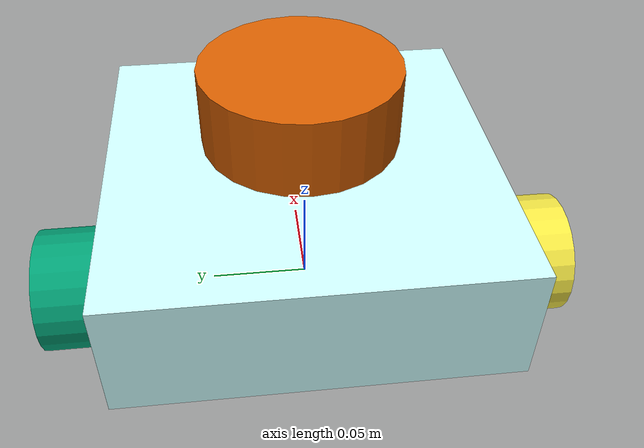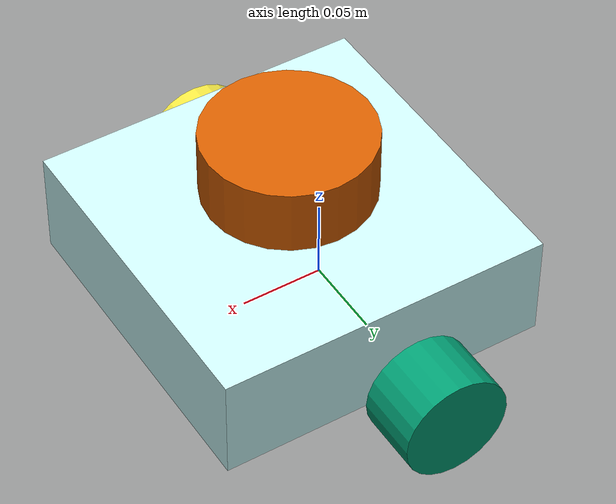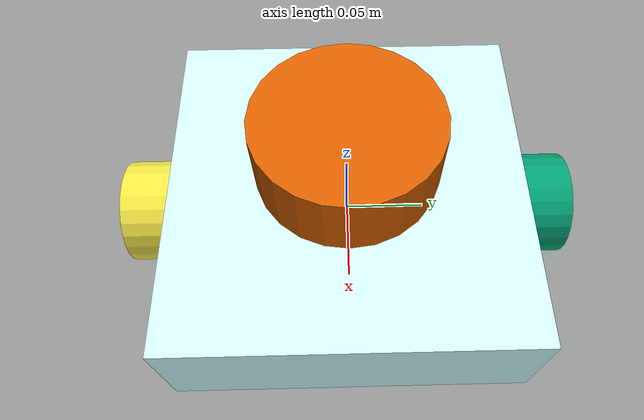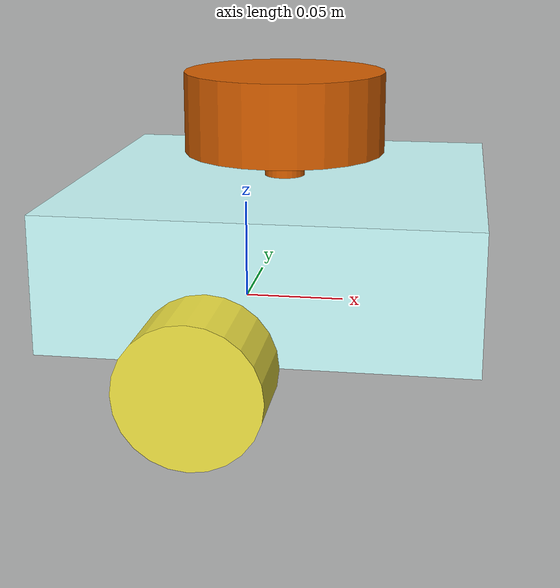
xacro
<?xml version="1.0"?>
<!-- Simple Robot -->
<!--
Copied and modified from ROS1 example -
https://github.com/ros-simulation/gazebo_ros_demos/blob/kinetic-devel/rrbot_description/urdf/rrbot.xacro
-->
<robot xmlns:xacro="http://www.ros.org/wiki/xacro" name="simple_robot">
	<xacro:include filename="inertial_macros.xacro"/>
	<link name="base_link">
	</link>

	<!-- Chassis Link-->
	<joint name="base_chassis_joint" type="fixed">
		<parent link="base_link"/>
		<child link="chassis"/>
		<origin xyz="0.02 0.0 0.0325"/>
	</joint>
	<link name="chassis">

		<visual>
			<origin xyz="0.0 0.0 0.0" rpy="0.0 0.0 0.0"/>
			<geometry>
				<box size="0.2 0.2 0.065"/>
			</geometry>
			<material name="Cyan">
				<color rgba="0.8 1.0 1.0 1.0"/>
			</material>
		</visual>
		<collision>
			<geometry>
				<box size="0.2 0.2 0.065"/>
			</geometry>
		</collision>
		<xacro:inertial_box mass="0.5" x="0.2" y="0.2" z="0.065" >
			<origin xyz="0.0 0.0 0.0" rpy="0.0 0.0 0.0"/>
		</xacro:inertial_box>
	</link>
	<!--left wheel link-->
	<joint name="left_wheel_joint" type="continuous">
		<parent link="base_link"/>
		<child link="left_wheel"/>
		<axis xyz="0 0 1"/>
		<origin xyz="0 0.12 0" rpy="-${pi/2} 0 0"/>
	</joint>

	<link name="left_wheel">
		<visual>
			<geometry>
				<cylinder radius="0.0325" length="0.04"/>
			</geometry>
		</visual>
		<collision>
			<geometry>
				<cylinder radius="0.0325" length="0.04"/>
			</geometry>
		</collision>
		<xacro:inertial_cylinder mass="0.1" length="0.04" radius="0.0325">
			<origin xyz="0.0 0.0 0.0" rpy="0.0 0.0 0.0"/>
		</xacro:inertial_cylinder>
	</link>
	<!--right wheel link-->
	<joint name="right_wheel_joint" type="continuous">
		<parent link="base_link"/>
		<child link="right_wheel"/>
		<axis xyz="0 0 1"/>
		<origin xyz="0 -0.12 0" rpy="${pi/2} 0 0"/>
	</joint>

	<link name="right_wheel">
		<visual>
			<geometry>
				<cylinder radius="0.0325" length="0.04"/>
			</geometry>
		</visual>
		<collision>
			<geometry>
				<cylinder radius="0.0325" length="0.04"/>
			</geometry>
		</collision>
		<xacro:inertial_cylinder mass="0.1" length="0.04" radius="0.0325">
			<origin xyz="0.0 0.0 0.0" rpy="0.0 0.0 0.0"/>
		</xacro:inertial_cylinder>
	</link>

	<!--caster wheel link-->
	<joint name="caster_wheel_joint" type="fixed">
		<parent link="chassis"/>
		<child link="caster_wheel"/>
		<origin xyz="0.065 0 -0.0325" rpy= "0 0 0"/>
	</joint>
	<link name="caster_wheel">
		<visual>
			<geometry>
				<sphere radius="0.0325"/>
			</geometry>
		</visual>
		<collision>
			<geometry>
				<sphere radius="0.0325"/>
			</geometry>
		</collision>
		<xacro:inertial_sphere mass="0.1" radius="0.0325">
			<origin xyz="0 0 0" rpy="0 0 0"/>
		</xacro:inertial_sphere>
	</link>
	<gazebo reference="caster_wheel">
        	<material>Gazebo/Black</material>
        	<mu1 value="0.001"/>
        	<mu2 value="0.001"/>
    	</gazebo>

	<!--lidar-->
	<joint name="laser_joint" type="fixed">
		<parent link="chassis"/>
		<child link="laser_frame"/>
		<origin xyz="0.0 0 0.065" rpy="0 0 0"/>
	</joint>

	<link name="laser_frame">
		<visual>
			<geometry>
				<cylinder radius="0.05" length="0.04"/>
			</geometry>
		</visual>
		<visual>
			<origin xyz="0 0 -0.05"/>
			<geometry>
				<cylinder radius="0.01" length="0.075"/>
			</geometry>
		</visual>
		<collision>
			<geometry>
				<cylinder radius="0.05" length="0.04"/>
			</geometry>
		</collision>
		<xacro:inertial_cylinder mass="0.1" length="0.04" radius="0.05">
			<origin xyz="0 0 0" rpy="0 0 0"/>
		</xacro:inertial_cylinder>
	</link>
</robot>
